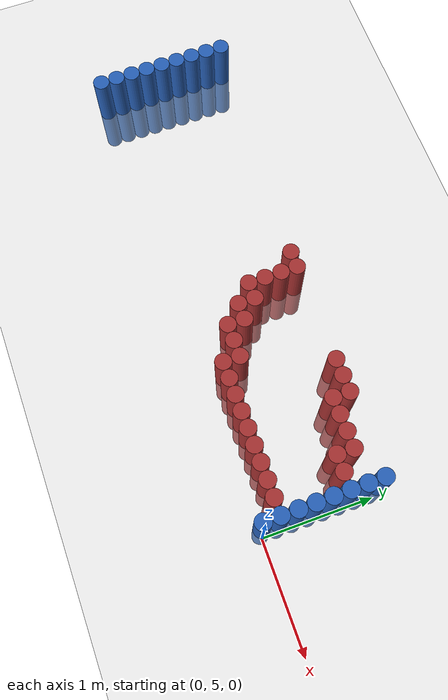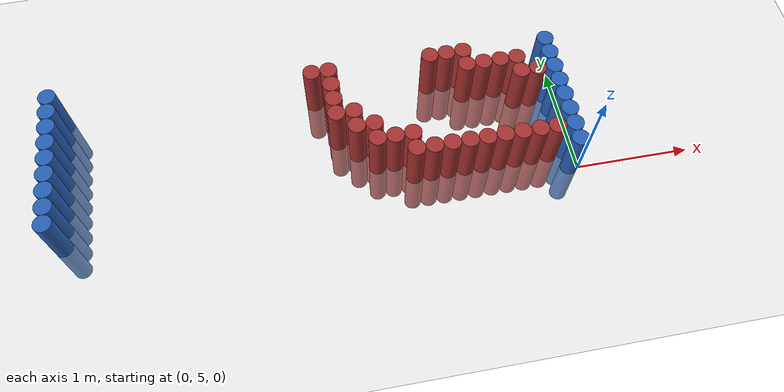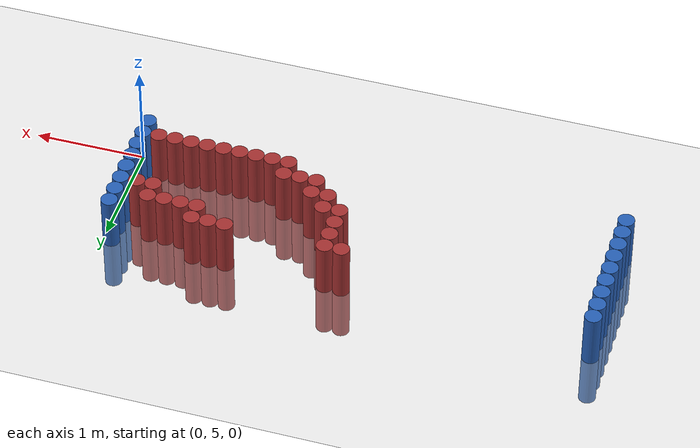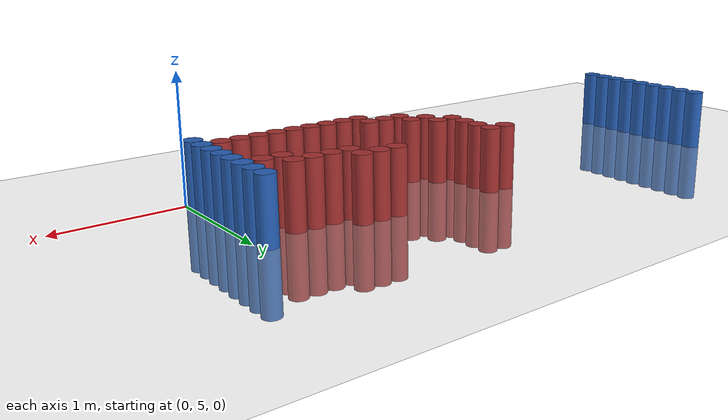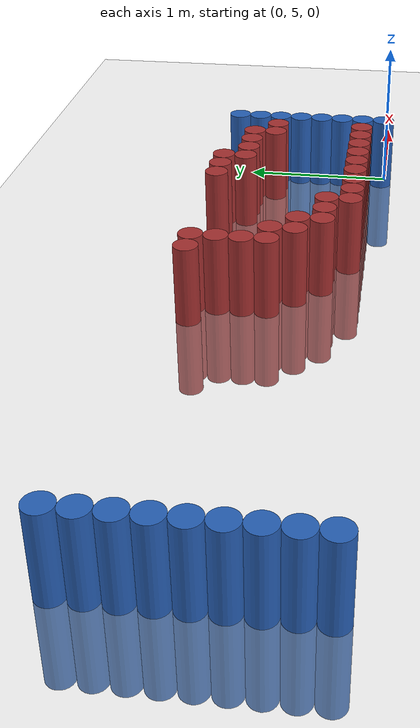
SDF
<sdf version="1.6">
 <world name="default">
  <model name="ground_plane">
   <static>1</static>
   <link name="link">
    <collision name="collision">
     <geometry><plane><normal>0 0 1</normal><size>100 100</size></plane></geometry>
     <surface><friction><ode><mu>100</mu><mu2>50</mu2></ode></friction></surface>
    </collision>
    <visual name="visual">
     <cast_shadows>0</cast_shadows>
     <geometry><plane><normal>0 0 1</normal><size>100 100</size></plane></geometry>
     <material>
      <script><uri>file://media/materials/scripts/gazebo.material</uri><name>Gazebo/Grey</name></script>
     </material>
    </visual>
   </link>
  </model>
  <model name="unit_cylinder_94">
   <static>1</static>
   <pose>-0.075000 5.025000 0.000000 0.000000 0.000000 0.000000</pose>
   <link name="link">
    <inertial>
     <mass>1</mass>
     <inertia><ixx>0.145833</ixx><ixy>0</ixy><ixz>0</ixz><iyy>0.145833</iyy><iyz>0</iyz><izz>0.125</izz></inertia>
    </inertial>
    <collision name="collision">
     <geometry><cylinder><radius>0.075000</radius><length>1</length></cylinder></geometry>
    </collision>
    <visual name="visual">
     <geometry><cylinder><radius>0.075000</radius><length>1</length></cylinder></geometry>
     <material>
      <ambient>0.152000 0.379000 0.720000 1</ambient>
      <diffuse>0.152000 0.379000 0.720000 1</diffuse>
     </material>
     <material>
      <script><name>Gazebo/Grey</name><uri>file://media/materials/scripts/gazebo.material</uri></script>
     </material>
    </visual>
   </link>
  </model>
  <model name="unit_cylinder_95">
   <static>1</static>
   <pose>-4.425000 5.025000 0.000000 0.000000 0.000000 0.000000</pose>
   <link name="link">
    <inertial>
     <mass>1</mass>
     <inertia><ixx>0.145833</ixx><ixy>0</ixy><ixz>0</ixz><iyy>0.145833</iyy><iyz>0</iyz><izz>0.125</izz></inertia>
    </inertial>
    <collision name="collision">
     <geometry><cylinder><radius>0.075000</radius><length>1</length></cylinder></geometry>
    </collision>
    <visual name="visual">
     <geometry><cylinder><radius>0.075000</radius><length>1</length></cylinder></geometry>
     <material>
      <ambient>0.152000 0.379000 0.720000 1</ambient>
      <diffuse>0.152000 0.379000 0.720000 1</diffuse>
     </material>
     <material>
      <script><name>Gazebo/Grey</name><uri>file://media/materials/scripts/gazebo.material</uri></script>
     </material>
    </visual>
   </link>
  </model>
  <model name="unit_cylinder_96">
   <static>1</static>
   <pose>-4.425000 5.175000 0.000000 0.000000 0.000000 0.000000</pose>
   <link name="link">
    <inertial>
     <mass>1</mass>
     <inertia><ixx>0.145833</ixx><ixy>0</ixy><ixz>0</ixz><iyy>0.145833</iyy><iyz>0</iyz><izz>0.125</izz></inertia>
    </inertial>
    <collision name="collision">
     <geometry><cylinder><radius>0.075000</radius><length>1</length></cylinder></geometry>
    </collision>
    <visual name="visual">
     <geometry><cylinder><radius>0.075000</radius><length>1</length></cylinder></geometry>
     <material>
      <ambient>0.152000 0.379000 0.720000 1</ambient>
      <diffuse>0.152000 0.379000 0.720000 1</diffuse>
     </material>
     <material>
      <script><name>Gazebo/Grey</name><uri>file://media/materials/scripts/gazebo.material</uri></script>
     </material>
    </visual>
   </link>
  </model>
  <model name="unit_cylinder_97">
   <static>1</static>
   <pose>-4.425000 5.325000 0.000000 0.000000 0.000000 0.000000</pose>
   <link name="link">
    <inertial>
     <mass>1</mass>
     <inertia><ixx>0.145833</ixx><ixy>0</ixy><ixz>0</ixz><iyy>0.145833</iyy><iyz>0</iyz><izz>0.125</izz></inertia>
    </inertial>
    <collision name="collision">
     <geometry><cylinder><radius>0.075000</radius><length>1</length></cylinder></geometry>
    </collision>
    <visual name="visual">
     <geometry><cylinder><radius>0.075000</radius><length>1</length></cylinder></geometry>
     <material>
      <ambient>0.152000 0.379000 0.720000 1</ambient>
      <diffuse>0.152000 0.379000 0.720000 1</diffuse>
     </material>
     <material>
      <script><name>Gazebo/Grey</name><uri>file://media/materials/scripts/gazebo.material</uri></script>
     </material>
    </visual>
   </link>
  </model>
  <model name="unit_cylinder_98">
   <static>1</static>
   <pose>-4.425000 5.475000 0.000000 0.000000 0.000000 0.000000</pose>
   <link name="link">
    <inertial>
     <mass>1</mass>
     <inertia><ixx>0.145833</ixx><ixy>0</ixy><ixz>0</ixz><iyy>0.145833</iyy><iyz>0</iyz><izz>0.125</izz></inertia>
    </inertial>
    <collision name="collision">
     <geometry><cylinder><radius>0.075000</radius><length>1</length></cylinder></geometry>
    </collision>
    <visual name="visual">
     <geometry><cylinder><radius>0.075000</radius><length>1</length></cylinder></geometry>
     <material>
      <ambient>0.152000 0.379000 0.720000 1</ambient>
      <diffuse>0.152000 0.379000 0.720000 1</diffuse>
     </material>
     <material>
      <script><name>Gazebo/Grey</name><uri>file://media/materials/scripts/gazebo.material</uri></script>
     </material>
    </visual>
   </link>
  </model>
  <model name="unit_cylinder_99">
   <static>1</static>
   <pose>-4.425000 5.625000 0.000000 0.000000 0.000000 0.000000</pose>
   <link name="link">
    <inertial>
     <mass>1</mass>
     <inertia><ixx>0.145833</ixx><ixy>0</ixy><ixz>0</ixz><iyy>0.145833</iyy><iyz>0</iyz><izz>0.125</izz></inertia>
    </inertial>
    <collision name="collision">
     <geometry><cylinder><radius>0.075000</radius><length>1</length></cylinder></geometry>
    </collision>
    <visual name="visual">
     <geometry><cylinder><radius>0.075000</radius><length>1</length></cylinder></geometry>
     <material>
      <ambient>0.152000 0.379000 0.720000 1</ambient>
      <diffuse>0.152000 0.379000 0.720000 1</diffuse>
     </material>
     <material>
      <script><name>Gazebo/Grey</name><uri>file://media/materials/scripts/gazebo.material</uri></script>
     </material>
    </visual>
   </link>
  </model>
  <model name="unit_cylinder_100">
   <static>1</static>
   <pose>-4.425000 5.775000 0.000000 0.000000 0.000000 0.000000</pose>
   <link name="link">
    <inertial>
     <mass>1</mass>
     <inertia><ixx>0.145833</ixx><ixy>0</ixy><ixz>0</ixz><iyy>0.145833</iyy><iyz>0</iyz><izz>0.125</izz></inertia>
    </inertial>
    <collision name="collision">
     <geometry><cylinder><radius>0.075000</radius><length>1</length></cylinder></geometry>
    </collision>
    <visual name="visual">
     <geometry><cylinder><radius>0.075000</radius><length>1</length></cylinder></geometry>
     <material>
      <ambient>0.152000 0.379000 0.720000 1</ambient>
      <diffuse>0.152000 0.379000 0.720000 1</diffuse>
     </material>
     <material>
      <script><name>Gazebo/Grey</name><uri>file://media/materials/scripts/gazebo.material</uri></script>
     </material>
    </visual>
   </link>
  </model>
  <model name="unit_cylinder_101">
   <static>1</static>
   <pose>-4.425000 5.925000 0.000000 0.000000 0.000000 0.000000</pose>
   <link name="link">
    <inertial>
     <mass>1</mass>
     <inertia><ixx>0.145833</ixx><ixy>0</ixy><ixz>0</ixz><iyy>0.145833</iyy><iyz>0</iyz><izz>0.125</izz></inertia>
    </inertial>
    <collision name="collision">
     <geometry><cylinder><radius>0.075000</radius><length>1</length></cylinder></geometry>
    </collision>
    <visual name="visual">
     <geometry><cylinder><radius>0.075000</radius><length>1</length></cylinder></geometry>
     <material>
      <ambient>0.152000 0.379000 0.720000 1</ambient>
      <diffuse>0.152000 0.379000 0.720000 1</diffuse>
     </material>
     <material>
      <script><name>Gazebo/Grey</name><uri>file://media/materials/scripts/gazebo.material</uri></script>
     </material>
    </visual>
   </link>
  </model>
  <model name="unit_cylinder_102">
   <static>1</static>
   <pose>-4.425000 6.075000 0.000000 0.000000 0.000000 0.000000</pose>
   <link name="link">
    <inertial>
     <mass>1</mass>
     <inertia><ixx>0.145833</ixx><ixy>0</ixy><ixz>0</ixz><iyy>0.145833</iyy><iyz>0</iyz><izz>0.125</izz></inertia>
    </inertial>
    <collision name="collision">
     <geometry><cylinder><radius>0.075000</radius><length>1</length></cylinder></geometry>
    </collision>
    <visual name="visual">
     <geometry><cylinder><radius>0.075000</radius><length>1</length></cylinder></geometry>
     <material>
      <ambient>0.152000 0.379000 0.720000 1</ambient>
      <diffuse>0.152000 0.379000 0.720000 1</diffuse>
     </material>
     <material>
      <script><name>Gazebo/Grey</name><uri>file://media/materials/scripts/gazebo.material</uri></script>
     </material>
    </visual>
   </link>
  </model>
  <model name="unit_cylinder_103">
   <static>1</static>
   <pose>-4.425000 6.225000 0.000000 0.000000 0.000000 0.000000</pose>
   <link name="link">
    <inertial>
     <mass>1</mass>
     <inertia><ixx>0.145833</ixx><ixy>0</ixy><ixz>0</ixz><iyy>0.145833</iyy><iyz>0</iyz><izz>0.125</izz></inertia>
    </inertial>
    <collision name="collision">
     <geometry><cylinder><radius>0.075000</radius><length>1</length></cylinder></geometry>
    </collision>
    <visual name="visual">
     <geometry><cylinder><radius>0.075000</radius><length>1</length></cylinder></geometry>
     <material>
      <ambient>0.152000 0.379000 0.720000 1</ambient>
      <diffuse>0.152000 0.379000 0.720000 1</diffuse>
     </material>
     <material>
      <script><name>Gazebo/Grey</name><uri>file://media/materials/scripts/gazebo.material</uri></script>
     </material>
    </visual>
   </link>
  </model>
  <model name="unit_cylinder_157">
   <static>1</static>
   <pose>-2.175000 6.075000 0.000000 0.000000 0.000000 0.000000</pose>
   <link name="link">
    <inertial>
     <mass>1</mass>
     <inertia><ixx>0.145833</ixx><ixy>0</ixy><ixz>0</ixz><iyy>0.145833</iyy><iyz>0</iyz><izz>0.125</izz></inertia>
    </inertial>
    <collision name="collision">
     <geometry><cylinder><radius>0.075000</radius><length>1</length></cylinder></geometry>
    </collision>
    <visual name="visual">
     <geometry><cylinder><radius>0.075000</radius><length>1</length></cylinder></geometry>
     <material>
      <ambient>0.648000 0.192000 0.192000 1</ambient>
      <diffuse>0.648000 0.192000 0.192000 1</diffuse>
     </material>
     <material>
      <script><name>Gazebo/Grey</name><uri>file://media/materials/scripts/gazebo.material</uri></script>
     </material>
    </visual>
   </link>
  </model>
  <model name="unit_cylinder_164">
   <static>1</static>
   <pose>-2.025000 5.625000 0.000000 0.000000 0.000000 0.000000</pose>
   <link name="link">
    <inertial>
     <mass>1</mass>
     <inertia><ixx>0.145833</ixx><ixy>0</ixy><ixz>0</ixz><iyy>0.145833</iyy><iyz>0</iyz><izz>0.125</izz></inertia>
    </inertial>
    <collision name="collision">
     <geometry><cylinder><radius>0.075000</radius><length>1</length></cylinder></geometry>
    </collision>
    <visual name="visual">
     <geometry><cylinder><radius>0.075000</radius><length>1</length></cylinder></geometry>
     <material>
      <ambient>0.648000 0.192000 0.192000 1</ambient>
      <diffuse>0.648000 0.192000 0.192000 1</diffuse>
     </material>
     <material>
      <script><name>Gazebo/Grey</name><uri>file://media/materials/scripts/gazebo.material</uri></script>
     </material>
    </visual>
   </link>
  </model>
  <model name="unit_cylinder_165">
   <static>1</static>
   <pose>-2.025000 5.775000 0.000000 0.000000 0.000000 0.000000</pose>
   <link name="link">
    <inertial>
     <mass>1</mass>
     <inertia><ixx>0.145833</ixx><ixy>0</ixy><ixz>0</ixz><iyy>0.145833</iyy><iyz>0</iyz><izz>0.125</izz></inertia>
    </inertial>
    <collision name="collision">
     <geometry><cylinder><radius>0.075000</radius><length>1</length></cylinder></geometry>
    </collision>
    <visual name="visual">
     <geometry><cylinder><radius>0.075000</radius><length>1</length></cylinder></geometry>
     <material>
      <ambient>0.648000 0.192000 0.192000 1</ambient>
      <diffuse>0.648000 0.192000 0.192000 1</diffuse>
     </material>
     <material>
      <script><name>Gazebo/Grey</name><uri>file://media/materials/scripts/gazebo.material</uri></script>
     </material>
    </visual>
   </link>
  </model>
  <model name="unit_cylinder_166">
   <static>1</static>
   <pose>-2.025000 5.925000 0.000000 0.000000 0.000000 0.000000</pose>
   <link name="link">
    <inertial>
     <mass>1</mass>
     <inertia><ixx>0.145833</ixx><ixy>0</ixy><ixz>0</ixz><iyy>0.145833</iyy><iyz>0</iyz><izz>0.125</izz></inertia>
    </inertial>
    <collision name="collision">
     <geometry><cylinder><radius>0.075000</radius><length>1</length></cylinder></geometry>
    </collision>
    <visual name="visual">
     <geometry><cylinder><radius>0.075000</radius><length>1</length></cylinder></geometry>
     <material>
      <ambient>0.648000 0.192000 0.192000 1</ambient>
      <diffuse>0.648000 0.192000 0.192000 1</diffuse>
     </material>
     <material>
      <script><name>Gazebo/Grey</name><uri>file://media/materials/scripts/gazebo.material</uri></script>
     </material>
    </visual>
   </link>
  </model>
  <model name="unit_cylinder_167">
   <static>1</static>
   <pose>-2.025000 6.075000 0.000000 0.000000 0.000000 0.000000</pose>
   <link name="link">
    <inertial>
     <mass>1</mass>
     <inertia><ixx>0.145833</ixx><ixy>0</ixy><ixz>0</ixz><iyy>0.145833</iyy><iyz>0</iyz><izz>0.125</izz></inertia>
    </inertial>
    <collision name="collision">
     <geometry><cylinder><radius>0.075000</radius><length>1</length></cylinder></geometry>
    </collision>
    <visual name="visual">
     <geometry><cylinder><radius>0.075000</radius><length>1</length></cylinder></geometry>
     <material>
      <ambient>0.648000 0.192000 0.192000 1</ambient>
      <diffuse>0.648000 0.192000 0.192000 1</diffuse>
     </material>
     <material>
      <script><name>Gazebo/Grey</name><uri>file://media/materials/scripts/gazebo.material</uri></script>
     </material>
    </visual>
   </link>
  </model>
  <model name="unit_cylinder_174">
   <static>1</static>
   <pose>-1.875000 5.475000 0.000000 0.000000 0.000000 0.000000</pose>
   <link name="link">
    <inertial>
     <mass>1</mass>
     <inertia><ixx>0.145833</ixx><ixy>0</ixy><ixz>0</ixz><iyy>0.145833</iyy><iyz>0</iyz><izz>0.125</izz></inertia>
    </inertial>
    <collision name="collision">
     <geometry><cylinder><radius>0.075000</radius><length>1</length></cylinder></geometry>
    </collision>
    <visual name="visual">
     <geometry><cylinder><radius>0.075000</radius><length>1</length></cylinder></geometry>
     <material>
      <ambient>0.648000 0.192000 0.192000 1</ambient>
      <diffuse>0.648000 0.192000 0.192000 1</diffuse>
     </material>
     <material>
      <script><name>Gazebo/Grey</name><uri>file://media/materials/scripts/gazebo.material</uri></script>
     </material>
    </visual>
   </link>
  </model>
  <model name="unit_cylinder_175">
   <static>1</static>
   <pose>-1.875000 5.625000 0.000000 0.000000 0.000000 0.000000</pose>
   <link name="link">
    <inertial>
     <mass>1</mass>
     <inertia><ixx>0.145833</ixx><ixy>0</ixy><ixz>0</ixz><iyy>0.145833</iyy><iyz>0</iyz><izz>0.125</izz></inertia>
    </inertial>
    <collision name="collision">
     <geometry><cylinder><radius>0.075000</radius><length>1</length></cylinder></geometry>
    </collision>
    <visual name="visual">
     <geometry><cylinder><radius>0.075000</radius><length>1</length></cylinder></geometry>
     <material>
      <ambient>0.648000 0.192000 0.192000 1</ambient>
      <diffuse>0.648000 0.192000 0.192000 1</diffuse>
     </material>
     <material>
      <script><name>Gazebo/Grey</name><uri>file://media/materials/scripts/gazebo.material</uri></script>
     </material>
    </visual>
   </link>
  </model>
  <model name="unit_cylinder_180">
   <static>1</static>
   <pose>-1.725000 5.325000 0.000000 0.000000 0.000000 0.000000</pose>
   <link name="link">
    <inertial>
     <mass>1</mass>
     <inertia><ixx>0.145833</ixx><ixy>0</ixy><ixz>0</ixz><iyy>0.145833</iyy><iyz>0</iyz><izz>0.125</izz></inertia>
    </inertial>
    <collision name="collision">
     <geometry><cylinder><radius>0.075000</radius><length>1</length></cylinder></geometry>
    </collision>
    <visual name="visual">
     <geometry><cylinder><radius>0.075000</radius><length>1</length></cylinder></geometry>
     <material>
      <ambient>0.648000 0.192000 0.192000 1</ambient>
      <diffuse>0.648000 0.192000 0.192000 1</diffuse>
     </material>
     <material>
      <script><name>Gazebo/Grey</name><uri>file://media/materials/scripts/gazebo.material</uri></script>
     </material>
    </visual>
   </link>
  </model>
  <model name="unit_cylinder_181">
   <static>1</static>
   <pose>-1.725000 5.475000 0.000000 0.000000 0.000000 0.000000</pose>
   <link name="link">
    <inertial>
     <mass>1</mass>
     <inertia><ixx>0.145833</ixx><ixy>0</ixy><ixz>0</ixz><iyy>0.145833</iyy><iyz>0</iyz><izz>0.125</izz></inertia>
    </inertial>
    <collision name="collision">
     <geometry><cylinder><radius>0.075000</radius><length>1</length></cylinder></geometry>
    </collision>
    <visual name="visual">
     <geometry><cylinder><radius>0.075000</radius><length>1</length></cylinder></geometry>
     <material>
      <ambient>0.648000 0.192000 0.192000 1</ambient>
      <diffuse>0.648000 0.192000 0.192000 1</diffuse>
     </material>
     <material>
      <script><name>Gazebo/Grey</name><uri>file://media/materials/scripts/gazebo.material</uri></script>
     </material>
    </visual>
   </link>
  </model>
  <model name="unit_cylinder_186">
   <static>1</static>
   <pose>-1.575000 5.325000 0.000000 0.000000 0.000000 0.000000</pose>
   <link name="link">
    <inertial>
     <mass>1</mass>
     <inertia><ixx>0.145833</ixx><ixy>0</ixy><ixz>0</ixz><iyy>0.145833</iyy><iyz>0</iyz><izz>0.125</izz></inertia>
    </inertial>
    <collision name="collision">
     <geometry><cylinder><radius>0.075000</radius><length>1</length></cylinder></geometry>
    </collision>
    <visual name="visual">
     <geometry><cylinder><radius>0.075000</radius><length>1</length></cylinder></geometry>
     <material>
      <ambient>0.648000 0.192000 0.192000 1</ambient>
      <diffuse>0.648000 0.192000 0.192000 1</diffuse>
     </material>
     <material>
      <script><name>Gazebo/Grey</name><uri>file://media/materials/scripts/gazebo.material</uri></script>
     </material>
    </visual>
   </link>
  </model>
  <model name="unit_cylinder_193">
   <static>1</static>
   <pose>-1.425000 5.175000 0.000000 0.000000 0.000000 0.000000</pose>
   <link name="link">
    <inertial>
     <mass>1</mass>
     <inertia><ixx>0.145833</ixx><ixy>0</ixy><ixz>0</ixz><iyy>0.145833</iyy><iyz>0</iyz><izz>0.125</izz></inertia>
    </inertial>
    <collision name="collision">
     <geometry><cylinder><radius>0.075000</radius><length>1</length></cylinder></geometry>
    </collision>
    <visual name="visual">
     <geometry><cylinder><radius>0.075000</radius><length>1</length></cylinder></geometry>
     <material>
      <ambient>0.648000 0.192000 0.192000 1</ambient>
      <diffuse>0.648000 0.192000 0.192000 1</diffuse>
     </material>
     <material>
      <script><name>Gazebo/Grey</name><uri>file://media/materials/scripts/gazebo.material</uri></script>
     </material>
    </visual>
   </link>
  </model>
  <model name="unit_cylinder_194">
   <static>1</static>
   <pose>-1.425000 5.325000 0.000000 0.000000 0.000000 0.000000</pose>
   <link name="link">
    <inertial>
     <mass>1</mass>
     <inertia><ixx>0.145833</ixx><ixy>0</ixy><ixz>0</ixz><iyy>0.145833</iyy><iyz>0</iyz><izz>0.125</izz></inertia>
    </inertial>
    <collision name="collision">
     <geometry><cylinder><radius>0.075000</radius><length>1</length></cylinder></geometry>
    </collision>
    <visual name="visual">
     <geometry><cylinder><radius>0.075000</radius><length>1</length></cylinder></geometry>
     <material>
      <ambient>0.648000 0.192000 0.192000 1</ambient>
      <diffuse>0.648000 0.192000 0.192000 1</diffuse>
     </material>
     <material>
      <script><name>Gazebo/Grey</name><uri>file://media/materials/scripts/gazebo.material</uri></script>
     </material>
    </visual>
   </link>
  </model>
  <model name="unit_cylinder_204">
   <static>1</static>
   <pose>-1.275000 5.175000 0.000000 0.000000 0.000000 0.000000</pose>
   <link name="link">
    <inertial>
     <mass>1</mass>
     <inertia><ixx>0.145833</ixx><ixy>0</ixy><ixz>0</ixz><iyy>0.145833</iyy><iyz>0</iyz><izz>0.125</izz></inertia>
    </inertial>
    <collision name="collision">
     <geometry><cylinder><radius>0.075000</radius><length>1</length></cylinder></geometry>
    </collision>
    <visual name="visual">
     <geometry><cylinder><radius>0.075000</radius><length>1</length></cylinder></geometry>
     <material>
      <ambient>0.648000 0.192000 0.192000 1</ambient>
      <diffuse>0.648000 0.192000 0.192000 1</diffuse>
     </material>
     <material>
      <script><name>Gazebo/Grey</name><uri>file://media/materials/scripts/gazebo.material</uri></script>
     </material>
    </visual>
   </link>
  </model>
  <model name="unit_cylinder_209">
   <static>1</static>
   <pose>-1.125000 5.175000 0.000000 0.000000 0.000000 0.000000</pose>
   <link name="link">
    <inertial>
     <mass>1</mass>
     <inertia><ixx>0.145833</ixx><ixy>0</ixy><ixz>0</ixz><iyy>0.145833</iyy><iyz>0</iyz><izz>0.125</izz></inertia>
    </inertial>
    <collision name="collision">
     <geometry><cylinder><radius>0.075000</radius><length>1</length></cylinder></geometry>
    </collision>
    <visual name="visual">
     <geometry><cylinder><radius>0.075000</radius><length>1</length></cylinder></geometry>
     <material>
      <ambient>0.648000 0.192000 0.192000 1</ambient>
      <diffuse>0.648000 0.192000 0.192000 1</diffuse>
     </material>
     <material>
      <script><name>Gazebo/Grey</name><uri>file://media/materials/scripts/gazebo.material</uri></script>
     </material>
    </visual>
   </link>
  </model>
  <model name="unit_cylinder_210">
   <static>1</static>
   <pose>-1.125000 6.075000 0.000000 0.000000 0.000000 0.000000</pose>
   <link name="link">
    <inertial>
     <mass>1</mass>
     <inertia><ixx>0.145833</ixx><ixy>0</ixy><ixz>0</ixz><iyy>0.145833</iyy><iyz>0</iyz><izz>0.125</izz></inertia>
    </inertial>
    <collision name="collision">
     <geometry><cylinder><radius>0.075000</radius><length>1</length></cylinder></geometry>
    </collision>
    <visual name="visual">
     <geometry><cylinder><radius>0.075000</radius><length>1</length></cylinder></geometry>
     <material>
      <ambient>0.648000 0.192000 0.192000 1</ambient>
      <diffuse>0.648000 0.192000 0.192000 1</diffuse>
     </material>
     <material>
      <script><name>Gazebo/Grey</name><uri>file://media/materials/scripts/gazebo.material</uri></script>
     </material>
    </visual>
   </link>
  </model>
  <model name="unit_cylinder_216">
   <static>1</static>
   <pose>-0.975000 5.175000 0.000000 0.000000 0.000000 0.000000</pose>
   <link name="link">
    <inertial>
     <mass>1</mass>
     <inertia><ixx>0.145833</ixx><ixy>0</ixy><ixz>0</ixz><iyy>0.145833</iyy><iyz>0</iyz><izz>0.125</izz></inertia>
    </inertial>
    <collision name="collision">
     <geometry><cylinder><radius>0.075000</radius><length>1</length></cylinder></geometry>
    </collision>
    <visual name="visual">
     <geometry><cylinder><radius>0.075000</radius><length>1</length></cylinder></geometry>
     <material>
      <ambient>0.648000 0.192000 0.192000 1</ambient>
      <diffuse>0.648000 0.192000 0.192000 1</diffuse>
     </material>
     <material>
      <script><name>Gazebo/Grey</name><uri>file://media/materials/scripts/gazebo.material</uri></script>
     </material>
    </visual>
   </link>
  </model>
  <model name="unit_cylinder_217">
   <static>1</static>
   <pose>-0.975000 6.075000 0.000000 0.000000 0.000000 0.000000</pose>
   <link name="link">
    <inertial>
     <mass>1</mass>
     <inertia><ixx>0.145833</ixx><ixy>0</ixy><ixz>0</ixz><iyy>0.145833</iyy><iyz>0</iyz><izz>0.125</izz></inertia>
    </inertial>
    <collision name="collision">
     <geometry><cylinder><radius>0.075000</radius><length>1</length></cylinder></geometry>
    </collision>
    <visual name="visual">
     <geometry><cylinder><radius>0.075000</radius><length>1</length></cylinder></geometry>
     <material>
      <ambient>0.648000 0.192000 0.192000 1</ambient>
      <diffuse>0.648000 0.192000 0.192000 1</diffuse>
     </material>
     <material>
      <script><name>Gazebo/Grey</name><uri>file://media/materials/scripts/gazebo.material</uri></script>
     </material>
    </visual>
   </link>
  </model>
  <model name="unit_cylinder_220">
   <static>1</static>
   <pose>-0.825000 5.175000 0.000000 0.000000 0.000000 0.000000</pose>
   <link name="link">
    <inertial>
     <mass>1</mass>
     <inertia><ixx>0.145833</ixx><ixy>0</ixy><ixz>0</ixz><iyy>0.145833</iyy><iyz>0</iyz><izz>0.125</izz></inertia>
    </inertial>
    <collision name="collision">
     <geometry><cylinder><radius>0.075000</radius><length>1</length></cylinder></geometry>
    </collision>
    <visual name="visual">
     <geometry><cylinder><radius>0.075000</radius><length>1</length></cylinder></geometry>
     <material>
      <ambient>0.648000 0.192000 0.192000 1</ambient>
      <diffuse>0.648000 0.192000 0.192000 1</diffuse>
     </material>
     <material>
      <script><name>Gazebo/Grey</name><uri>file://media/materials/scripts/gazebo.material</uri></script>
     </material>
    </visual>
   </link>
  </model>
  <model name="unit_cylinder_221">
   <static>1</static>
   <pose>-0.825000 5.925000 0.000000 0.000000 0.000000 0.000000</pose>
   <link name="link">
    <inertial>
     <mass>1</mass>
     <inertia><ixx>0.145833</ixx><ixy>0</ixy><ixz>0</ixz><iyy>0.145833</iyy><iyz>0</iyz><izz>0.125</izz></inertia>
    </inertial>
    <collision name="collision">
     <geometry><cylinder><radius>0.075000</radius><length>1</length></cylinder></geometry>
    </collision>
    <visual name="visual">
     <geometry><cylinder><radius>0.075000</radius><length>1</length></cylinder></geometry>
     <material>
      <ambient>0.648000 0.192000 0.192000 1</ambient>
      <diffuse>0.648000 0.192000 0.192000 1</diffuse>
     </material>
     <material>
      <script><name>Gazebo/Grey</name><uri>file://media/materials/scripts/gazebo.material</uri></script>
     </material>
    </visual>
   </link>
  </model>
  <model name="unit_cylinder_222">
   <static>1</static>
   <pose>-0.825000 6.075000 0.000000 0.000000 0.000000 0.000000</pose>
   <link name="link">
    <inertial>
     <mass>1</mass>
     <inertia><ixx>0.145833</ixx><ixy>0</ixy><ixz>0</ixz><iyy>0.145833</iyy><iyz>0</iyz><izz>0.125</izz></inertia>
    </inertial>
    <collision name="collision">
     <geometry><cylinder><radius>0.075000</radius><length>1</length></cylinder></geometry>
    </collision>
    <visual name="visual">
     <geometry><cylinder><radius>0.075000</radius><length>1</length></cylinder></geometry>
     <material>
      <ambient>0.648000 0.192000 0.192000 1</ambient>
      <diffuse>0.648000 0.192000 0.192000 1</diffuse>
     </material>
     <material>
      <script><name>Gazebo/Grey</name><uri>file://media/materials/scripts/gazebo.material</uri></script>
     </material>
    </visual>
   </link>
  </model>
  <model name="unit_cylinder_226">
   <static>1</static>
   <pose>-0.675000 5.175000 0.000000 0.000000 0.000000 0.000000</pose>
   <link name="link">
    <inertial>
     <mass>1</mass>
     <inertia><ixx>0.145833</ixx><ixy>0</ixy><ixz>0</ixz><iyy>0.145833</iyy><iyz>0</iyz><izz>0.125</izz></inertia>
    </inertial>
    <collision name="collision">
     <geometry><cylinder><radius>0.075000</radius><length>1</length></cylinder></geometry>
    </collision>
    <visual name="visual">
     <geometry><cylinder><radius>0.075000</radius><length>1</length></cylinder></geometry>
     <material>
      <ambient>0.648000 0.192000 0.192000 1</ambient>
      <diffuse>0.648000 0.192000 0.192000 1</diffuse>
     </material>
     <material>
      <script><name>Gazebo/Grey</name><uri>file://media/materials/scripts/gazebo.material</uri></script>
     </material>
    </visual>
   </link>
  </model>
  <model name="unit_cylinder_227">
   <static>1</static>
   <pose>-0.675000 5.925000 0.000000 0.000000 0.000000 0.000000</pose>
   <link name="link">
    <inertial>
     <mass>1</mass>
     <inertia><ixx>0.145833</ixx><ixy>0</ixy><ixz>0</ixz><iyy>0.145833</iyy><iyz>0</iyz><izz>0.125</izz></inertia>
    </inertial>
    <collision name="collision">
     <geometry><cylinder><radius>0.075000</radius><length>1</length></cylinder></geometry>
    </collision>
    <visual name="visual">
     <geometry><cylinder><radius>0.075000</radius><length>1</length></cylinder></geometry>
     <material>
      <ambient>0.648000 0.192000 0.192000 1</ambient>
      <diffuse>0.648000 0.192000 0.192000 1</diffuse>
     </material>
     <material>
      <script><name>Gazebo/Grey</name><uri>file://media/materials/scripts/gazebo.material</uri></script>
     </material>
    </visual>
   </link>
  </model>
  <model name="unit_cylinder_231">
   <static>1</static>
   <pose>-0.525000 5.175000 0.000000 0.000000 0.000000 0.000000</pose>
   <link name="link">
    <inertial>
     <mass>1</mass>
     <inertia><ixx>0.145833</ixx><ixy>0</ixy><ixz>0</ixz><iyy>0.145833</iyy><iyz>0</iyz><izz>0.125</izz></inertia>
    </inertial>
    <collision name="collision">
     <geometry><cylinder><radius>0.075000</radius><length>1</length></cylinder></geometry>
    </collision>
    <visual name="visual">
     <geometry><cylinder><radius>0.075000</radius><length>1</length></cylinder></geometry>
     <material>
      <ambient>0.648000 0.192000 0.192000 1</ambient>
      <diffuse>0.648000 0.192000 0.192000 1</diffuse>
     </material>
     <material>
      <script><name>Gazebo/Grey</name><uri>file://media/materials/scripts/gazebo.material</uri></script>
     </material>
    </visual>
   </link>
  </model>
  <model name="unit_cylinder_232">
   <static>1</static>
   <pose>-0.525000 5.925000 0.000000 0.000000 0.000000 0.000000</pose>
   <link name="link">
    <inertial>
     <mass>1</mass>
     <inertia><ixx>0.145833</ixx><ixy>0</ixy><ixz>0</ixz><iyy>0.145833</iyy><iyz>0</iyz><izz>0.125</izz></inertia>
    </inertial>
    <collision name="collision">
     <geometry><cylinder><radius>0.075000</radius><length>1</length></cylinder></geometry>
    </collision>
    <visual name="visual">
     <geometry><cylinder><radius>0.075000</radius><length>1</length></cylinder></geometry>
     <material>
      <ambient>0.648000 0.192000 0.192000 1</ambient>
      <diffuse>0.648000 0.192000 0.192000 1</diffuse>
     </material>
     <material>
      <script><name>Gazebo/Grey</name><uri>file://media/materials/scripts/gazebo.material</uri></script>
     </material>
    </visual>
   </link>
  </model>
  <model name="unit_cylinder_239">
   <static>1</static>
   <pose>-0.375000 5.175000 0.000000 0.000000 0.000000 0.000000</pose>
   <link name="link">
    <inertial>
     <mass>1</mass>
     <inertia><ixx>0.145833</ixx><ixy>0</ixy><ixz>0</ixz><iyy>0.145833</iyy><iyz>0</iyz><izz>0.125</izz></inertia>
    </inertial>
    <collision name="collision">
     <geometry><cylinder><radius>0.075000</radius><length>1</length></cylinder></geometry>
    </collision>
    <visual name="visual">
     <geometry><cylinder><radius>0.075000</radius><length>1</length></cylinder></geometry>
     <material>
      <ambient>0.648000 0.192000 0.192000 1</ambient>
      <diffuse>0.648000 0.192000 0.192000 1</diffuse>
     </material>
     <material>
      <script><name>Gazebo/Grey</name><uri>file://media/materials/scripts/gazebo.material</uri></script>
     </material>
    </visual>
   </link>
  </model>
  <model name="unit_cylinder_240">
   <static>1</static>
   <pose>-0.375000 5.775000 0.000000 0.000000 0.000000 0.000000</pose>
   <link name="link">
    <inertial>
     <mass>1</mass>
     <inertia><ixx>0.145833</ixx><ixy>0</ixy><ixz>0</ixz><iyy>0.145833</iyy><iyz>0</iyz><izz>0.125</izz></inertia>
    </inertial>
    <collision name="collision">
     <geometry><cylinder><radius>0.075000</radius><length>1</length></cylinder></geometry>
    </collision>
    <visual name="visual">
     <geometry><cylinder><radius>0.075000</radius><length>1</length></cylinder></geometry>
     <material>
      <ambient>0.648000 0.192000 0.192000 1</ambient>
      <diffuse>0.648000 0.192000 0.192000 1</diffuse>
     </material>
     <material>
      <script><name>Gazebo/Grey</name><uri>file://media/materials/scripts/gazebo.material</uri></script>
     </material>
    </visual>
   </link>
  </model>
  <model name="unit_cylinder_241">
   <static>1</static>
   <pose>-0.375000 5.925000 0.000000 0.000000 0.000000 0.000000</pose>
   <link name="link">
    <inertial>
     <mass>1</mass>
     <inertia><ixx>0.145833</ixx><ixy>0</ixy><ixz>0</ixz><iyy>0.145833</iyy><iyz>0</iyz><izz>0.125</izz></inertia>
    </inertial>
    <collision name="collision">
     <geometry><cylinder><radius>0.075000</radius><length>1</length></cylinder></geometry>
    </collision>
    <visual name="visual">
     <geometry><cylinder><radius>0.075000</radius><length>1</length></cylinder></geometry>
     <material>
      <ambient>0.648000 0.192000 0.192000 1</ambient>
      <diffuse>0.648000 0.192000 0.192000 1</diffuse>
     </material>
     <material>
      <script><name>Gazebo/Grey</name><uri>file://media/materials/scripts/gazebo.material</uri></script>
     </material>
    </visual>
   </link>
  </model>
  <model name="unit_cylinder_245">
   <static>1</static>
   <pose>-0.225000 5.175000 0.000000 0.000000 0.000000 0.000000</pose>
   <link name="link">
    <inertial>
     <mass>1</mass>
     <inertia><ixx>0.145833</ixx><ixy>0</ixy><ixz>0</ixz><iyy>0.145833</iyy><iyz>0</iyz><izz>0.125</izz></inertia>
    </inertial>
    <collision name="collision">
     <geometry><cylinder><radius>0.075000</radius><length>1</length></cylinder></geometry>
    </collision>
    <visual name="visual">
     <geometry><cylinder><radius>0.075000</radius><length>1</length></cylinder></geometry>
     <material>
      <ambient>0.648000 0.192000 0.192000 1</ambient>
      <diffuse>0.648000 0.192000 0.192000 1</diffuse>
     </material>
     <material>
      <script><name>Gazebo/Grey</name><uri>file://media/materials/scripts/gazebo.material</uri></script>
     </material>
    </visual>
   </link>
  </model>
  <model name="unit_cylinder_246">
   <static>1</static>
   <pose>-0.225000 5.775000 0.000000 0.000000 0.000000 0.000000</pose>
   <link name="link">
    <inertial>
     <mass>1</mass>
     <inertia><ixx>0.145833</ixx><ixy>0</ixy><ixz>0</ixz><iyy>0.145833</iyy><iyz>0</iyz><izz>0.125</izz></inertia>
    </inertial>
    <collision name="collision">
     <geometry><cylinder><radius>0.075000</radius><length>1</length></cylinder></geometry>
    </collision>
    <visual name="visual">
     <geometry><cylinder><radius>0.075000</radius><length>1</length></cylinder></geometry>
     <material>
      <ambient>0.648000 0.192000 0.192000 1</ambient>
      <diffuse>0.648000 0.192000 0.192000 1</diffuse>
     </material>
     <material>
      <script><name>Gazebo/Grey</name><uri>file://media/materials/scripts/gazebo.material</uri></script>
     </material>
    </visual>
   </link>
  </model>
  <model name="unit_cylinder_249">
   <static>1</static>
   <pose>-0.075000 5.175000 0.000000 0.000000 0.000000 0.000000</pose>
   <link name="link">
    <inertial>
     <mass>1</mass>
     <inertia><ixx>0.145833</ixx><ixy>0</ixy><ixz>0</ixz><iyy>0.145833</iyy><iyz>0</iyz><izz>0.125</izz></inertia>
    </inertial>
    <collision name="collision">
     <geometry><cylinder><radius>0.075000</radius><length>1</length></cylinder></geometry>
    </collision>
    <visual name="visual">
     <geometry><cylinder><radius>0.075000</radius><length>1</length></cylinder></geometry>
     <material>
      <ambient>0.152000 0.379000 0.720000 1</ambient>
      <diffuse>0.152000 0.379000 0.720000 1</diffuse>
     </material>
     <material>
      <script><name>Gazebo/Grey</name><uri>file://media/materials/scripts/gazebo.material</uri></script>
     </material>
    </visual>
   </link>
  </model>
  <model name="unit_cylinder_250">
   <static>1</static>
   <pose>-0.075000 5.325000 0.000000 0.000000 0.000000 0.000000</pose>
   <link name="link">
    <inertial>
     <mass>1</mass>
     <inertia><ixx>0.145833</ixx><ixy>0</ixy><ixz>0</ixz><iyy>0.145833</iyy><iyz>0</iyz><izz>0.125</izz></inertia>
    </inertial>
    <collision name="collision">
     <geometry><cylinder><radius>0.075000</radius><length>1</length></cylinder></geometry>
    </collision>
    <visual name="visual">
     <geometry><cylinder><radius>0.075000</radius><length>1</length></cylinder></geometry>
     <material>
      <ambient>0.152000 0.379000 0.720000 1</ambient>
      <diffuse>0.152000 0.379000 0.720000 1</diffuse>
     </material>
     <material>
      <script><name>Gazebo/Grey</name><uri>file://media/materials/scripts/gazebo.material</uri></script>
     </material>
    </visual>
   </link>
  </model>
  <model name="unit_cylinder_251">
   <static>1</static>
   <pose>-0.075000 5.475000 0.000000 0.000000 0.000000 0.000000</pose>
   <link name="link">
    <inertial>
     <mass>1</mass>
     <inertia><ixx>0.145833</ixx><ixy>0</ixy><ixz>0</ixz><iyy>0.145833</iyy><iyz>0</iyz><izz>0.125</izz></inertia>
    </inertial>
    <collision name="collision">
     <geometry><cylinder><radius>0.075000</radius><length>1</length></cylinder></geometry>
    </collision>
    <visual name="visual">
     <geometry><cylinder><radius>0.075000</radius><length>1</length></cylinder></geometry>
     <material>
      <ambient>0.152000 0.379000 0.720000 1</ambient>
      <diffuse>0.152000 0.379000 0.720000 1</diffuse>
     </material>
     <material>
      <script><name>Gazebo/Grey</name><uri>file://media/materials/scripts/gazebo.material</uri></script>
     </material>
    </visual>
   </link>
  </model>
  <model name="unit_cylinder_252">
   <static>1</static>
   <pose>-0.075000 5.625000 0.000000 0.000000 0.000000 0.000000</pose>
   <link name="link">
    <inertial>
     <mass>1</mass>
     <inertia><ixx>0.145833</ixx><ixy>0</ixy><ixz>0</ixz><iyy>0.145833</iyy><iyz>0</iyz><izz>0.125</izz></inertia>
    </inertial>
    <collision name="collision">
     <geometry><cylinder><radius>0.075000</radius><length>1</length></cylinder></geometry>
    </collision>
    <visual name="visual">
     <geometry><cylinder><radius>0.075000</radius><length>1</length></cylinder></geometry>
     <material>
      <ambient>0.152000 0.379000 0.720000 1</ambient>
      <diffuse>0.152000 0.379000 0.720000 1</diffuse>
     </material>
     <material>
      <script><name>Gazebo/Grey</name><uri>file://media/materials/scripts/gazebo.material</uri></script>
     </material>
    </visual>
   </link>
  </model>
  <model name="unit_cylinder_253">
   <static>1</static>
   <pose>-0.075000 5.775000 0.000000 0.000000 0.000000 0.000000</pose>
   <link name="link">
    <inertial>
     <mass>1</mass>
     <inertia><ixx>0.145833</ixx><ixy>0</ixy><ixz>0</ixz><iyy>0.145833</iyy><iyz>0</iyz><izz>0.125</izz></inertia>
    </inertial>
    <collision name="collision">
     <geometry><cylinder><radius>0.075000</radius><length>1</length></cylinder></geometry>
    </collision>
    <visual name="visual">
     <geometry><cylinder><radius>0.075000</radius><length>1</length></cylinder></geometry>
     <material>
      <ambient>0.152000 0.379000 0.720000 1</ambient>
      <diffuse>0.152000 0.379000 0.720000 1</diffuse>
     </material>
     <material>
      <script><name>Gazebo/Grey</name><uri>file://media/materials/scripts/gazebo.material</uri></script>
     </material>
    </visual>
   </link>
  </model>
  <model name="unit_cylinder_254">
   <static>1</static>
   <pose>-0.075000 5.925000 0.000000 0.000000 0.000000 0.000000</pose>
   <link name="link">
    <inertial>
     <mass>1</mass>
     <inertia><ixx>0.145833</ixx><ixy>0</ixy><ixz>0</ixz><iyy>0.145833</iyy><iyz>0</iyz><izz>0.125</izz></inertia>
    </inertial>
    <collision name="collision">
     <geometry><cylinder><radius>0.075000</radius><length>1</length></cylinder></geometry>
    </collision>
    <visual name="visual">
     <geometry><cylinder><radius>0.075000</radius><length>1</length></cylinder></geometry>
     <material>
      <ambient>0.152000 0.379000 0.720000 1</ambient>
      <diffuse>0.152000 0.379000 0.720000 1</diffuse>
     </material>
     <material>
      <script><name>Gazebo/Grey</name><uri>file://media/materials/scripts/gazebo.material</uri></script>
     </material>
    </visual>
   </link>
  </model>
  <model name="unit_cylinder_255">
   <static>1</static>
   <pose>-0.075000 6.075000 0.000000 0.000000 0.000000 0.000000</pose>
   <link name="link">
    <inertial>
     <mass>1</mass>
     <inertia><ixx>0.145833</ixx><ixy>0</ixy><ixz>0</ixz><iyy>0.145833</iyy><iyz>0</iyz><izz>0.125</izz></inertia>
    </inertial>
    <collision name="collision">
     <geometry><cylinder><radius>0.075000</radius><length>1</length></cylinder></geometry>
    </collision>
    <visual name="visual">
     <geometry><cylinder><radius>0.075000</radius><length>1</length></cylinder></geometry>
     <material>
      <ambient>0.152000 0.379000 0.720000 1</ambient>
      <diffuse>0.152000 0.379000 0.720000 1</diffuse>
     </material>
     <material>
      <script><name>Gazebo/Grey</name><uri>file://media/materials/scripts/gazebo.material</uri></script>
     </material>
    </visual>
   </link>
  </model>
 </world>
</sdf>
